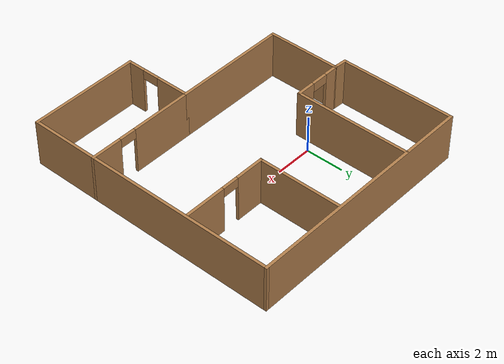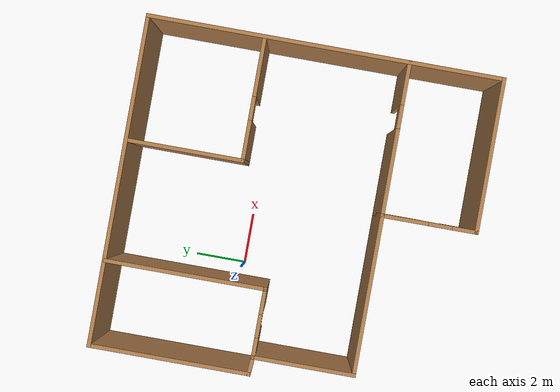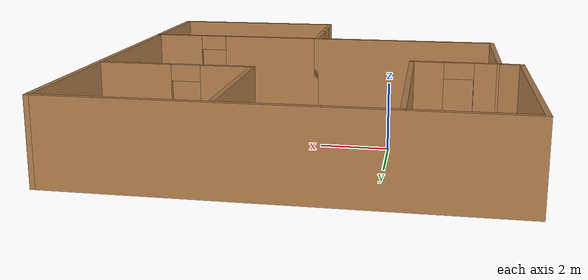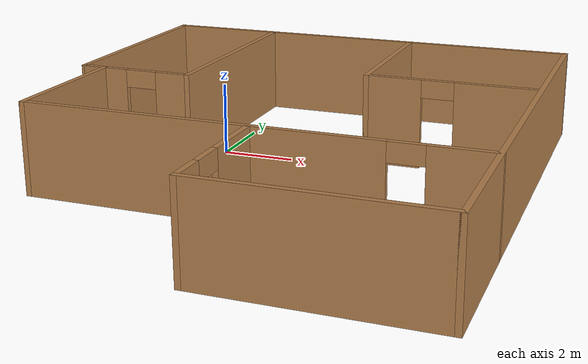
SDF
<?xml version='1.0'?>
<sdf version='1.7'>
  <model name='house'>
    <pose>2.44724 -1.73 0 0 -0 0</pose>
    <link name='Wall_0'>
      <collision name='Wall_0_Collision'>
        <geometry>
          <box>
            <size>4 0.15 2.5</size>
          </box>
        </geometry>
        <pose>0 0 1.25 0 -0 0</pose>
      </collision>
      <visual name='Wall_0_Visual'>
        <pose>0 0 1.25 0 -0 0</pose>
        <geometry>
          <box>
            <size>4 0.15 2.5</size>
          </box>
        </geometry>
        <material>
          <script>
            <uri>file://media/materials/scripts/gazebo.material</uri>
            <name>Gazebo/Wood</name>
          </script>
          <ambient>1 1 1 1</ambient>
        </material>
        <meta>
          <layer>0</layer>
        </meta>
      </visual>
      <pose>-5.64724 -1.275 0 0 -0 -1.5708</pose>
    </link>
    <link name='Wall_1'>
      <collision name='Wall_1_Collision'>
        <geometry>
          <box>
            <size>6.25 0.15 2.5</size>
          </box>
        </geometry>
        <pose>0 0 1.25 0 -0 0</pose>
      </collision>
      <visual name='Wall_1_Visual'>
        <pose>0 0 1.25 0 -0 0</pose>
        <geometry>
          <box>
            <size>6.25 0.15 2.5</size>
          </box>
        </geometry>
        <material>
          <script>
            <uri>file://media/materials/scripts/gazebo.material</uri>
            <name>Gazebo/Wood</name>
          </script>
          <ambient>1 1 1 1</ambient>
        </material>
        <meta>
          <layer>0</layer>
        </meta>
      </visual>
      <pose>-2.59723 -3.2 0 0 -0 0</pose>
    </link>
    <link name='Wall_10'>
      <pose>3.85457 2.33411 0 0 -0 0</pose>
      <visual name='Wall_10_Visual_0'>
        <pose>-1.55991 0 1.25 0 -0 0</pose>
        <geometry>
          <box>
            <size>1.63019 0.15 2.5</size>
          </box>
        </geometry>
        <material>
          <script>
            <uri>file://media/materials/scripts/gazebo.material</uri>
            <name>Gazebo/Wood</name>
          </script>
          <ambient>1 1 1 1</ambient>
        </material>
        <meta>
          <layer>0</layer>
        </meta>
      </visual>
      <collision name='Wall_10_Collision_0'>
        <geometry>
          <box>
            <size>1.63019 0.15 2.5</size>
          </box>
        </geometry>
        <pose>-1.55991 0 1.25 0 -0 0</pose>
      </collision>
      <visual name='Wall_10_Visual_1'>
        <pose>1.2651 0 1.25 0 -0 0</pose>
        <geometry>
          <box>
            <size>2.21981 0.15 2.5</size>
          </box>
        </geometry>
        <material>
          <script>
            <uri>file://media/materials/scripts/gazebo.material</uri>
            <name>Gazebo/Wood</name>
          </script>
          <ambient>1 1 1 1</ambient>
        </material>
        <meta>
          <layer>0</layer>
        </meta>
      </visual>
      <collision name='Wall_10_Collision_1'>
        <geometry>
          <box>
            <size>2.21981 0.15 2.5</size>
          </box>
        </geometry>
        <pose>1.2651 0 1.25 0 -0 0</pose>
      </collision>
      <visual name='Wall_10_Visual_2'>
        <pose>-0.29481 0 2.25 0 -0 0</pose>
        <geometry>
          <box>
            <size>0.9 0.15 0.5</size>
          </box>
        </geometry>
        <material>
          <script>
            <uri>file://media/materials/scripts/gazebo.material</uri>
            <name>Gazebo/Wood</name>
          </script>
          <ambient>1 1 1 1</ambient>
        </material>
        <meta>
          <layer>0</layer>
        </meta>
      </visual>
      <collision name='Wall_10_Collision_2'>
        <geometry>
          <box>
            <size>0.9 0.15 0.5</size>
          </box>
        </geometry>
        <pose>-0.29481 0 2.25 0 -0 0</pose>
      </collision>
    </link>
    <link name='Wall_12'>
      <pose>3.37777 -3.2 0 0 -0 0</pose>
      <visual name='Wall_12_Visual_0'>
        <pose>-1.2998 0 1.25 0 -0 0</pose>
        <geometry>
          <box>
            <size>3.40039 0.15 2.5</size>
          </box>
        </geometry>
        <material>
          <script>
            <uri>file://media/materials/scripts/gazebo.material</uri>
            <name>Gazebo/Wood</name>
          </script>
          <ambient>1 1 1 1</ambient>
        </material>
        <meta>
          <layer>0</layer>
        </meta>
      </visual>
      <collision name='Wall_12_Collision_0'>
        <geometry>
          <box>
            <size>3.40039 0.15 2.5</size>
          </box>
        </geometry>
        <pose>-1.2998 0 1.25 0 -0 0</pose>
      </collision>
      <visual name='Wall_12_Visual_1'>
        <pose>2.1502 0 1.25 0 -0 0</pose>
        <geometry>
          <box>
            <size>1.69961 0.15 2.5</size>
          </box>
        </geometry>
        <material>
          <script>
            <uri>file://media/materials/scripts/gazebo.material</uri>
            <name>Gazebo/Wood</name>
          </script>
          <ambient>1 1 1 1</ambient>
        </material>
        <meta>
          <layer>0</layer>
        </meta>
      </visual>
      <collision name='Wall_12_Collision_1'>
        <geometry>
          <box>
            <size>1.69961 0.15 2.5</size>
          </box>
        </geometry>
        <pose>2.1502 0 1.25 0 -0 0</pose>
      </collision>
      <visual name='Wall_12_Visual_2'>
        <pose>0.850391 0 2.25 0 -0 0</pose>
        <geometry>
          <box>
            <size>0.9 0.15 0.5</size>
          </box>
        </geometry>
        <material>
          <script>
            <uri>file://media/materials/scripts/gazebo.material</uri>
            <name>Gazebo/Wood</name>
          </script>
          <ambient>1 1 1 1</ambient>
        </material>
        <meta>
          <layer>0</layer>
        </meta>
      </visual>
      <collision name='Wall_12_Collision_2'>
        <geometry>
          <box>
            <size>0.9 0.15 0.5</size>
          </box>
        </geometry>
        <pose>0.850391 0 2.25 0 -0 0</pose>
      </collision>
    </link>
    <link name='Wall_14'>
      <pose>-4.34724 0.65 0 0 -0 0</pose>
      <visual name='Wall_14_Visual_0'>
        <pose>-0.969382 0 1.25 0 -0 0</pose>
        <geometry>
          <box>
            <size>0.811237 0.15 2.5</size>
          </box>
        </geometry>
        <material>
          <script>
            <uri>file://media/materials/scripts/gazebo.material</uri>
            <name>Gazebo/Wood</name>
          </script>
          <ambient>1 1 1 1</ambient>
        </material>
        <meta>
          <layer>0</layer>
        </meta>
      </visual>
      <collision name='Wall_14_Collision_0'>
        <geometry>
          <box>
            <size>0.811237 0.15 2.5</size>
          </box>
        </geometry>
        <pose>-0.969382 0 1.25 0 -0 0</pose>
      </collision>
      <visual name='Wall_14_Visual_1'>
        <pose>0.855618 0 1.25 0 -0 0</pose>
        <geometry>
          <box>
            <size>1.03876 0.15 2.5</size>
          </box>
        </geometry>
        <material>
          <script>
            <uri>file://media/materials/scripts/gazebo.material</uri>
            <name>Gazebo/Wood</name>
          </script>
          <ambient>1 1 1 1</ambient>
        </material>
        <meta>
          <layer>0</layer>
        </meta>
      </visual>
      <collision name='Wall_14_Collision_1'>
        <geometry>
          <box>
            <size>1.03876 0.15 2.5</size>
          </box>
        </geometry>
        <pose>0.855618 0 1.25 0 -0 0</pose>
      </collision>
      <visual name='Wall_14_Visual_2'>
        <pose>-0.113763 0 2.25 0 -0 0</pose>
        <geometry>
          <box>
            <size>0.9 0.15 0.5</size>
          </box>
        </geometry>
        <material>
          <script>
            <uri>file://media/materials/scripts/gazebo.material</uri>
            <name>Gazebo/Wood</name>
          </script>
          <ambient>1 1 1 1</ambient>
        </material>
        <meta>
          <layer>0</layer>
        </meta>
      </visual>
      <collision name='Wall_14_Collision_2'>
        <geometry>
          <box>
            <size>0.9 0.15 0.5</size>
          </box>
        </geometry>
        <pose>-0.113763 0 2.25 0 -0 0</pose>
      </collision>
    </link>
    <link name='Wall_15'>
      <collision name='Wall_15_Collision'>
        <geometry>
          <box>
            <size>6.25 0.15 2.5</size>
          </box>
        </geometry>
        <pose>0 0 1.25 0 -0 0</pose>
      </collision>
      <visual name='Wall_15_Visual'>
        <pose>0 0 1.25 0 -0 0</pose>
        <geometry>
          <box>
            <size>6.25 0.15 2.5</size>
          </box>
        </geometry>
        <material>
          <script>
            <uri>file://media/materials/scripts/gazebo.material</uri>
            <name>Gazebo/Wood</name>
          </script>
          <ambient>1 1 1 1</ambient>
        </material>
        <meta>
          <layer>0</layer>
        </meta>
      </visual>
      <pose>-3.04724 3.7 0 0 -0 1.5708</pose>
    </link>
    <link name='Wall_2'>
      <pose>0.452765 -5 0 0 -0 -1.5708</pose>
      <visual name='Wall_2_Visual_0'>
        <pose>-0.953809 0 1.25 0 -0 0</pose>
        <geometry>
          <box>
            <size>1.84238 0.15 2.5</size>
          </box>
        </geometry>
        <material>
          <script>
            <uri>file://media/materials/scripts/gazebo.material</uri>
            <name>Gazebo/Wood</name>
          </script>
          <ambient>1 1 1 1</ambient>
        </material>
        <meta>
          <layer>0</layer>
        </meta>
      </visual>
      <collision name='Wall_2_Collision_0'>
        <geometry>
          <box>
            <size>1.84238 0.15 2.5</size>
          </box>
        </geometry>
        <pose>-0.953809 0 1.25 0 -0 0</pose>
      </collision>
      <visual name='Wall_2_Visual_1'>
        <pose>1.37119 0 1.25 0 -0 0</pose>
        <geometry>
          <box>
            <size>1.00762 0.15 2.5</size>
          </box>
        </geometry>
        <material>
          <script>
            <uri>file://media/materials/scripts/gazebo.material</uri>
            <name>Gazebo/Wood</name>
          </script>
          <ambient>1 1 1 1</ambient>
        </material>
        <meta>
          <layer>0</layer>
        </meta>
      </visual>
      <collision name='Wall_2_Collision_1'>
        <geometry>
          <box>
            <size>1.00762 0.15 2.5</size>
          </box>
        </geometry>
        <pose>1.37119 0 1.25 0 -0 0</pose>
      </collision>
      <visual name='Wall_2_Visual_2'>
        <pose>0.417381 0 2.25 0 -0 0</pose>
        <geometry>
          <box>
            <size>0.9 0.15 0.5</size>
          </box>
        </geometry>
        <material>
          <script>
            <uri>file://media/materials/scripts/gazebo.material</uri>
            <name>Gazebo/Wood</name>
          </script>
          <ambient>1 1 1 1</ambient>
        </material>
        <meta>
          <layer>0</layer>
        </meta>
      </visual>
      <collision name='Wall_2_Collision_2'>
        <geometry>
          <box>
            <size>0.9 0.15 0.5</size>
          </box>
        </geometry>
        <pose>0.417381 0 2.25 0 -0 0</pose>
      </collision>
    </link>
    <link name='Wall_3'>
      <collision name='Wall_3_Collision'>
        <geometry>
          <box>
            <size>6 0.15 2.5</size>
          </box>
        </geometry>
        <pose>0 0 1.25 0 -0 0</pose>
      </collision>
      <visual name='Wall_3_Visual'>
        <pose>0 0 1.25 0 -0 0</pose>
        <geometry>
          <box>
            <size>6 0.15 2.5</size>
          </box>
        </geometry>
        <material>
          <script>
            <uri>file://media/materials/scripts/gazebo.material</uri>
            <name>Gazebo/Wood</name>
          </script>
          <ambient>1 1 1 1</ambient>
        </material>
        <meta>
          <layer>0</layer>
        </meta>
      </visual>
      <pose>3.37777 -6.8 0 0 -0 0</pose>
    </link>
    <link name='Wall_4'>
      <collision name='Wall_4_Collision'>
        <geometry>
          <box>
            <size>13.75 0.15 2.5</size>
          </box>
        </geometry>
        <pose>0 0 1.25 0 -0 0</pose>
      </collision>
      <visual name='Wall_4_Visual'>
        <pose>0 0 1.25 0 -0 0</pose>
        <geometry>
          <box>
            <size>13.75 0.15 2.5</size>
          </box>
        </geometry>
        <material>
          <script>
            <uri>file://media/materials/scripts/gazebo.material</uri>
            <name>Gazebo/Wood</name>
          </script>
          <ambient>1 1 1 1</ambient>
        </material>
        <meta>
          <layer>0</layer>
        </meta>
      </visual>
      <pose>6.30276 0 0 0 -0 1.5708</pose>
    </link>
    <link name='Wall_5'>
      <collision name='Wall_5_Collision'>
        <geometry>
          <box>
            <size>12.75 0.15 2.5</size>
          </box>
        </geometry>
        <pose>0 0 1.25 0 -0 0</pose>
      </collision>
      <visual name='Wall_5_Visual'>
        <pose>0 0 1.25 0 -0 0</pose>
        <geometry>
          <box>
            <size>12.75 0.15 2.5</size>
          </box>
        </geometry>
        <material>
          <script>
            <uri>file://media/materials/scripts/gazebo.material</uri>
            <name>Gazebo/Wood</name>
          </script>
          <ambient>1 1 1 1</ambient>
        </material>
        <meta>
          <layer>0</layer>
        </meta>
      </visual>
      <pose>0.002765 6.8 0 0 -0 3.14159</pose>
    </link>
    <link name='Wall_6'>
      <collision name='Wall_6_Collision'>
        <geometry>
          <box>
            <size>6.25 0.15 2.5</size>
          </box>
        </geometry>
        <pose>0 0 1.25 0 -0 0</pose>
      </collision>
      <visual name='Wall_6_Visual'>
        <pose>0 0 1.25 0 -0 0</pose>
        <geometry>
          <box>
            <size>6.25 0.15 2.5</size>
          </box>
        </geometry>
        <material>
          <script>
            <uri>file://media/materials/scripts/gazebo.material</uri>
            <name>Gazebo/Wood</name>
          </script>
          <ambient>1 1 1 1</ambient>
        </material>
        <meta>
          <layer>0</layer>
        </meta>
      </visual>
      <pose>-6.29723 3.75 0 0 -0 -1.5708</pose>
    </link>
    <link name='Wall_7'>
      <collision name='Wall_7_Collision'>
        <geometry>
          <box>
            <size>0.80192 0.15 2.5</size>
          </box>
        </geometry>
        <pose>0 0 1.25 0 -0 0</pose>
      </collision>
      <visual name='Wall_7_Visual'>
        <pose>0 0 1.25 0 -0 0</pose>
        <geometry>
          <box>
            <size>0.80192 0.15 2.5</size>
          </box>
        </geometry>
        <material>
          <script>
            <uri>file://media/materials/scripts/gazebo.material</uri>
            <name>Gazebo/Wood</name>
          </script>
          <ambient>1 1 1 1</ambient>
        </material>
        <meta>
          <layer>0</layer>
        </meta>
      </visual>
      <pose>-5.97224 0.675 0 0 -0 -0.076772</pose>
    </link>
    <link name='Wall_9'>
      <collision name='Wall_9_Collision'>
        <geometry>
          <box>
            <size>4.5 0.15 2.5</size>
          </box>
        </geometry>
        <pose>0 0 1.25 0 -0 0</pose>
      </collision>
      <visual name='Wall_9_Visual'>
        <pose>0 0 1.25 0 -0 0</pose>
        <geometry>
          <box>
            <size>4.5 0.15 2.5</size>
          </box>
        </geometry>
        <material>
          <script>
            <uri>file://media/materials/scripts/gazebo.material</uri>
            <name>Gazebo/Wood</name>
          </script>
          <ambient>1 1 1 1</ambient>
        </material>
        <meta>
          <layer>0</layer>
        </meta>
      </visual>
      <pose>1.55457 4.50911 0 0 -0 -1.5708</pose>
    </link>
    <static>1</static>
  </model>
</sdf>
